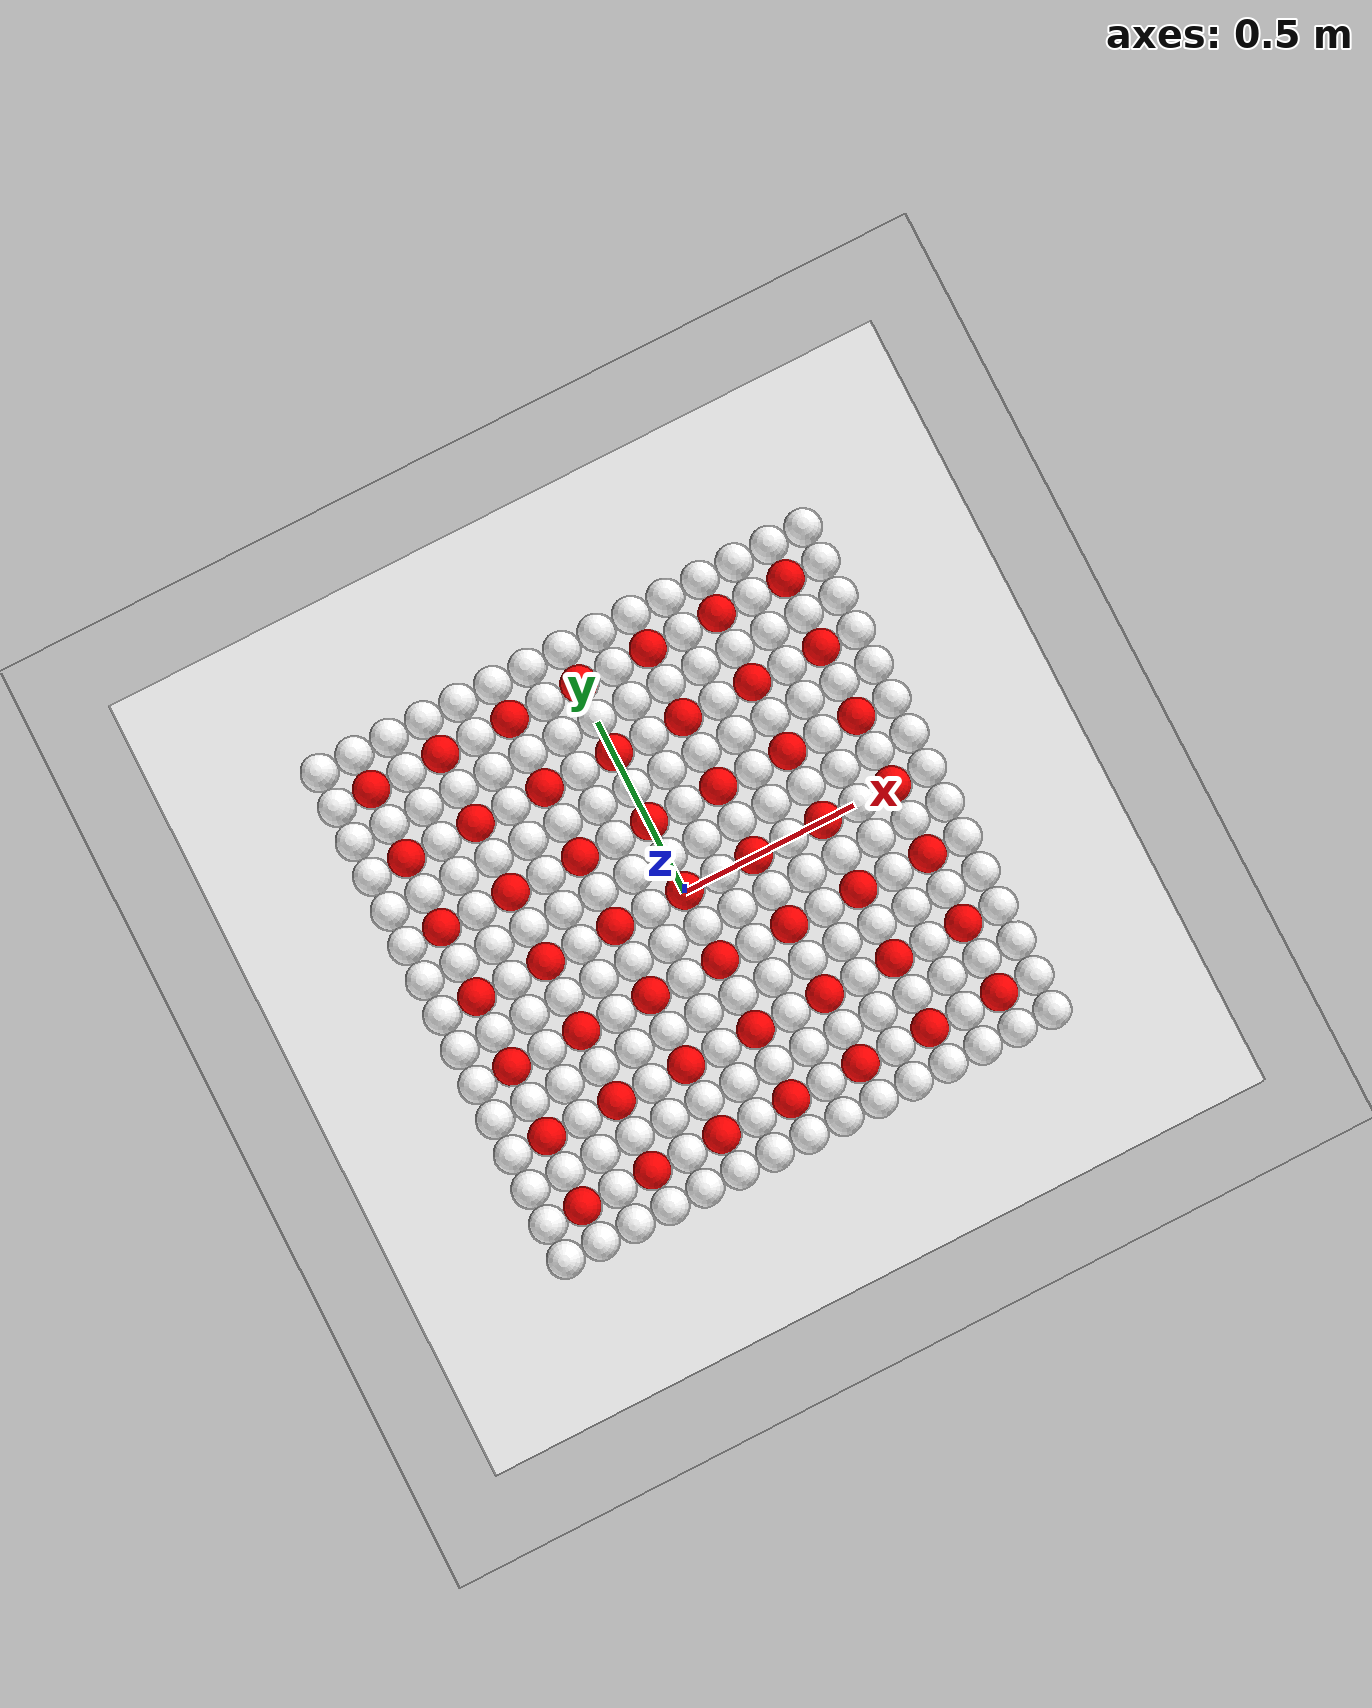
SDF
<?xml version='1.0'?>
<gazebo version='1.3'>
<world name='default'>

<include>
  <uri>model://ground_plane</uri>
</include>

<include>
  <uri>model://sun</uri>
</include>

<include>
  <uri>model://spring_board10</uri>
</include>

<physics type='ode'>
  <gravity>0.0 0.0 -9.8</gravity>
  <ode>
    <solver>
      <iters>150</iters>
    </solver>
    <constraints>
      <cfm>0.2</cfm>
    </constraints>
  </ode>
</physics>

<include>
  <uri>model://box</uri>
  <pose>0 0 0.055 0 0 0</pose>
</include>

<gui fullscreen='0'>
  <camera name='user_camera'>
    <pose>0.130675 -0.121126 0.095229 0 0.347643 2.35619</pose>
    <view_controller>orbit</view_controller>
  </camera>
</gui>

</world>
</gazebo>

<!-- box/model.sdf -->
<sdf version="1.4">
    <model name="box">
      <pose>0 0 0 0 0 0</pose>
      <link name="link">
        <pose>0 0 0.00025 0 0 0</pose>
        <inertial>
          <mass>0.05</mass>
        </inertial>

        <collision name="collision">
          <geometry>
            <box>
              <size>0.0275 0.0275 0.0005</size>
            </box>
          </geometry>
        </collision>

        <visual name="visual">
          <geometry>
            <box>
              <size>0.0275 0.0275 0.0005</size>
            </box>
          </geometry>
        </visual>
       </link>
      <joint name = "my_mass_joint" type="prismatic">
        <parent>world</parent>
          <child>link</child>
          <axis>
            <xyz>0 0 1</xyz>
          </axis>
      </joint>
      <plugin name="mass_joint" filename="libmass_joint.so" />
    </model>
</sdf>
